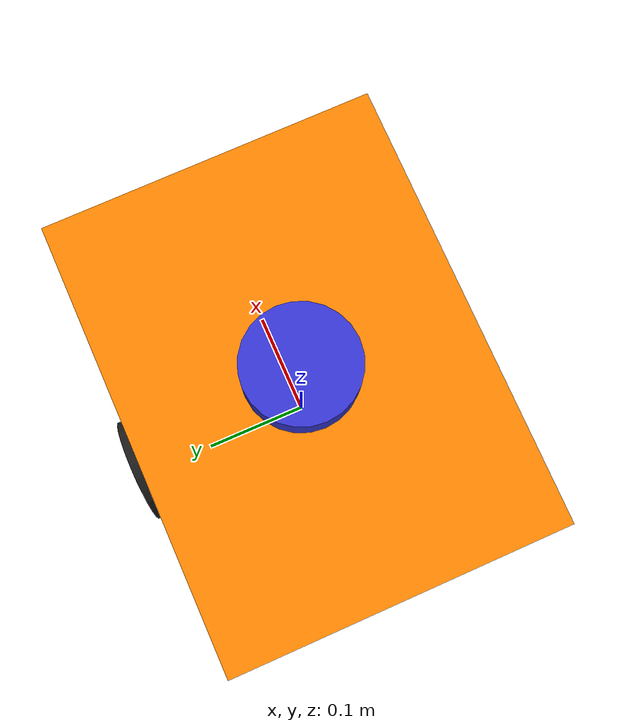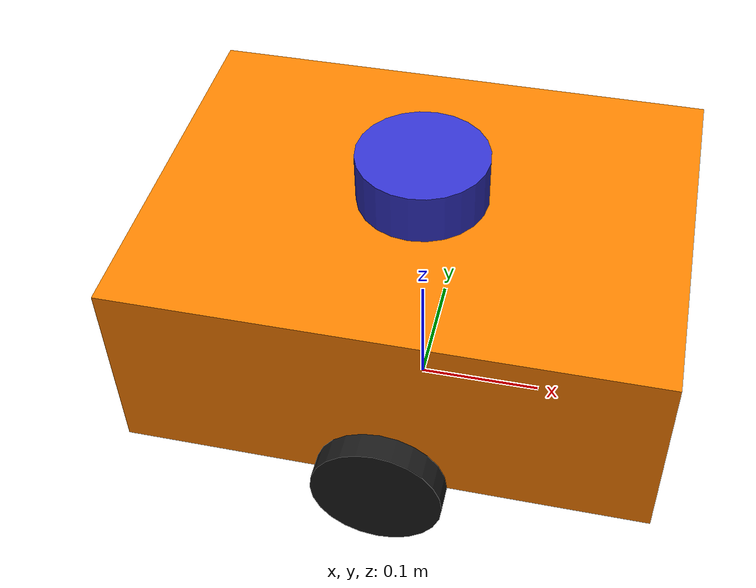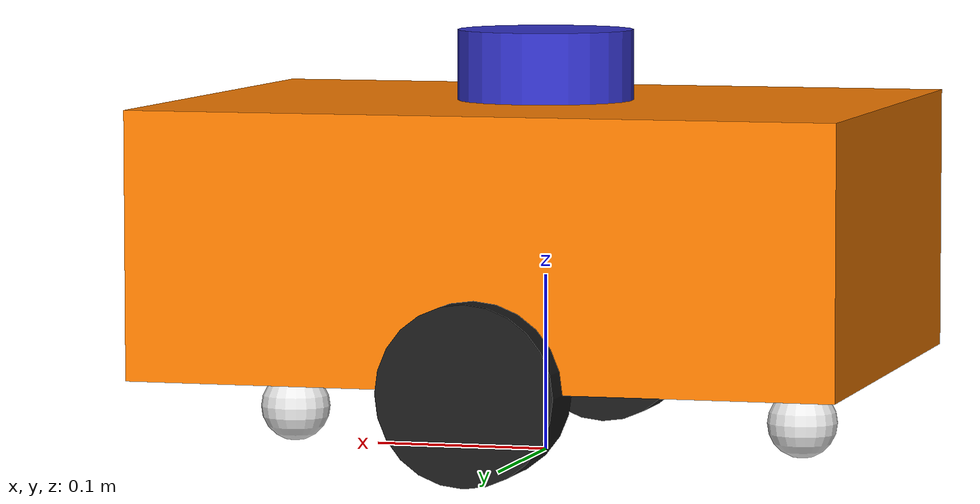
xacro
<?xml version="1.0"?>
<robot xmlns:xacro="http://www.ros.org/wiki/xacro" name="amr_robot">

  <!-- Robot Properties -->
  <xacro:property name="wheel_radius" value="0.05"/>
  <xacro:property name="wheel_width" value="0.04"/>
  <xacro:property name="wheel_separation" value="0.3"/>
  <xacro:property name="chassis_length" value="0.4"/>
  <xacro:property name="chassis_width" value="0.3"/>
  <xacro:property name="chassis_height" value="0.15"/>
  <xacro:property name="caster_radius" value="0.02"/>

  <!-- Colors -->
  <material name="blue">
    <color rgba="0.2 0.2 0.8 1.0"/>
  </material>
  <material name="black">
    <color rgba="0.1 0.1 0.1 1.0"/>
  </material>
  <material name="white">
    <color rgba="0.9 0.9 0.9 1.0"/>
  </material>
  <material name="orange">
    <color rgba="1.0 0.5 0.0 1.0"/>
  </material>

  <!-- Base Footprint -->
  <link name="base_footprint"/>

  <!-- Base Link -->
  <link name="base_link">
    <visual>
      <geometry>
        <box size="${chassis_length} ${chassis_width} ${chassis_height}"/>
      </geometry>
      <origin xyz="0 0 ${chassis_height/2 + wheel_radius}" rpy="0 0 0"/>
      <material name="orange"/>
    </visual>
    <collision>
      <geometry>
        <box size="${chassis_length} ${chassis_width} ${chassis_height}"/>
      </geometry>
      <origin xyz="0 0 ${chassis_height/2 + wheel_radius}" rpy="0 0 0"/>
    </collision>
    <inertial>
      <mass value="5.0"/>
      <origin xyz="0 0 ${chassis_height/2 + wheel_radius}" rpy="0 0 0"/>
      <inertia ixx="0.05" ixy="0.0" ixz="0.0" iyy="0.1" iyz="0.0" izz="0.1"/>
    </inertial>
  </link>

  <joint name="base_joint" type="fixed">
    <parent link="base_footprint"/>
    <child link="base_link"/>
    <origin xyz="0 0 0" rpy="0 0 0"/>
  </joint>

  <!-- Wheel Macro -->
  <xacro:macro name="wheel" params="prefix y_offset">
    <link name="${prefix}_wheel">
      <visual>
        <geometry>
          <cylinder radius="${wheel_radius}" length="${wheel_width}"/>
        </geometry>
        <origin xyz="0 0 0" rpy="${pi/2} 0 0"/>
        <material name="black"/>
      </visual>
      <collision>
        <geometry>
          <cylinder radius="${wheel_radius}" length="${wheel_width}"/>
        </geometry>
        <origin xyz="0 0 0" rpy="${pi/2} 0 0"/>
      </collision>
      <inertial>
        <mass value="0.5"/>
        <origin xyz="0 0 0" rpy="${pi/2} 0 0"/>
        <inertia ixx="0.001" ixy="0.0" ixz="0.0" iyy="0.001" iyz="0.0" izz="0.001"/>
      </inertial>
    </link>

    <joint name="${prefix}_wheel_joint" type="continuous">
      <parent link="base_link"/>
      <child link="${prefix}_wheel"/>
      <origin xyz="0 ${y_offset} ${wheel_radius}" rpy="0 0 0"/>
      <axis xyz="0 1 0"/>
      <dynamics damping="0.1" friction="0.1"/>
    </joint>
  </xacro:macro>

  <!-- Left and Right Wheels -->
  <xacro:wheel prefix="left" y_offset="${wheel_separation/2}"/>
  <xacro:wheel prefix="right" y_offset="${-wheel_separation/2}"/>

  <!-- Front Caster -->
  <link name="front_caster">
    <visual>
      <geometry>
        <sphere radius="${caster_radius}"/>
      </geometry>
      <material name="white"/>
    </visual>
    <collision>
      <geometry>
        <sphere radius="${caster_radius}"/>
      </geometry>
    </collision>
    <inertial>
      <mass value="0.1"/>
      <inertia ixx="0.0001" ixy="0.0" ixz="0.0" iyy="0.0001" iyz="0.0" izz="0.0001"/>
    </inertial>
  </link>

  <joint name="front_caster_joint" type="fixed">
    <parent link="base_link"/>
    <child link="front_caster"/>
    <origin xyz="${chassis_length/2 - 0.05} 0 ${caster_radius}" rpy="0 0 0"/>
  </joint>

  <!-- Rear Caster -->
  <link name="rear_caster">
    <visual>
      <geometry>
        <sphere radius="${caster_radius}"/>
      </geometry>
      <material name="white"/>
    </visual>
    <collision>
      <geometry>
        <sphere radius="${caster_radius}"/>
      </geometry>
    </collision>
    <inertial>
      <mass value="0.1"/>
      <inertia ixx="0.0001" ixy="0.0" ixz="0.0" iyy="0.0001" iyz="0.0" izz="0.0001"/>
    </inertial>
  </link>

  <joint name="rear_caster_joint" type="fixed">
    <parent link="base_link"/>
    <child link="rear_caster"/>
    <origin xyz="${-chassis_length/2 + 0.05} 0 ${caster_radius}" rpy="0 0 0"/>
  </joint>

  <!-- Lidar Link -->
  <link name="lidar_link">
    <visual>
      <geometry>
        <cylinder radius="0.05" length="0.04"/>
      </geometry>
      <material name="blue"/>
    </visual>
    <collision>
      <geometry>
        <cylinder radius="0.05" length="0.04"/>
      </geometry>
    </collision>
    <inertial>
      <mass value="0.2"/>
      <inertia ixx="0.0001" ixy="0.0" ixz="0.0" iyy="0.0001" iyz="0.0" izz="0.0001"/>
    </inertial>
  </link>

  <joint name="lidar_joint" type="fixed">
    <parent link="base_link"/>
    <child link="lidar_link"/>
    <origin xyz="0 0 ${chassis_height + wheel_radius + 0.02}" rpy="0 0 0"/>
  </joint>

  <!-- IMU Link -->
  <link name="imu_link">
    <visual>
      <geometry>
        <box size="0.02 0.02 0.01"/>
      </geometry>
      <material name="blue"/>
    </visual>
  </link>

  <joint name="imu_joint" type="fixed">
    <parent link="base_link"/>
    <child link="imu_link"/>
    <origin xyz="0 0 ${chassis_height + wheel_radius}" rpy="0 0 0"/>
  </joint>

  <!-- Gazebo Plugins -->
  <gazebo>
    <plugin name="diff_drive" filename="libgazebo_ros_diff_drive.so">
      <ros>
        <namespace>/</namespace>
      </ros>

      <left_joint>left_wheel_joint</left_joint>
      <right_joint>right_wheel_joint</right_joint>

      <wheel_separation>${wheel_separation}</wheel_separation>
      <wheel_diameter>${wheel_radius * 2}</wheel_diameter>

      <max_wheel_torque>20</max_wheel_torque>
      <max_wheel_acceleration>1.0</max_wheel_acceleration>

      <command_topic>cmd_vel</command_topic>
      <odometry_topic>odom</odometry_topic>
      <odometry_frame>odom</odometry_frame>
      <robot_base_frame>base_footprint</robot_base_frame>

      <publish_odom>true</publish_odom>
      <publish_odom_tf>true</publish_odom_tf>
      <publish_wheel_tf>true</publish_wheel_tf>

      <update_rate>50</update_rate>
    </plugin>
  </gazebo>

  <!-- Gazebo Lidar Plugin -->
  <gazebo reference="lidar_link">
    <sensor name="lidar" type="ray">
      <always_on>true</always_on>
      <visualize>true</visualize>
      <update_rate>10</update_rate>
      <ray>
        <scan>
          <horizontal>
            <samples>360</samples>
            <resolution>1</resolution>
            <min_angle>-3.14159</min_angle>
            <max_angle>3.14159</max_angle>
          </horizontal>
        </scan>
        <range>
          <min>0.12</min>
          <max>12.0</max>
          <resolution>0.01</resolution>
        </range>
        <noise>
          <type>gaussian</type>
          <mean>0.0</mean>
          <stddev>0.01</stddev>
        </noise>
      </ray>
      <plugin name="scan" filename="libgazebo_ros_ray_sensor.so">
        <ros>
          <remapping>~/out:=scan</remapping>
        </ros>
        <output_type>sensor_msgs/LaserScan</output_type>
        <frame_name>lidar_link</frame_name>
      </plugin>
    </sensor>
    <material>Gazebo/Blue</material>
  </gazebo>

  <!-- Gazebo IMU Plugin -->
  <gazebo reference="imu_link">
    <sensor name="imu_sensor" type="imu">
      <always_on>true</always_on>
      <update_rate>100</update_rate>
      <plugin name="imu_plugin" filename="libgazebo_ros_imu_sensor.so">
        <ros>
          <remapping>~/out:=imu</remapping>
        </ros>
        <initial_orientation_as_reference>false</initial_orientation_as_reference>
        <frame_name>imu_link</frame_name>
      </plugin>
    </sensor>
  </gazebo>

  <!-- Gazebo Colors -->
  <gazebo reference="base_link">
    <material>Gazebo/Orange</material>
  </gazebo>
  <gazebo reference="left_wheel">
    <material>Gazebo/Black</material>
    <mu1>1.0</mu1>
    <mu2>1.0</mu2>
  </gazebo>
  <gazebo reference="right_wheel">
    <material>Gazebo/Black</material>
    <mu1>1.0</mu1>
    <mu2>1.0</mu2>
  </gazebo>
  <gazebo reference="front_caster">
    <material>Gazebo/White</material>
    <mu1>0.0</mu1>
    <mu2>0.0</mu2>
  </gazebo>
  <gazebo reference="rear_caster">
    <material>Gazebo/White</material>
    <mu1>0.0</mu1>
    <mu2>0.0</mu2>
  </gazebo>

</robot>
